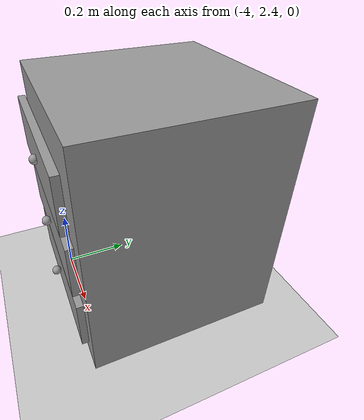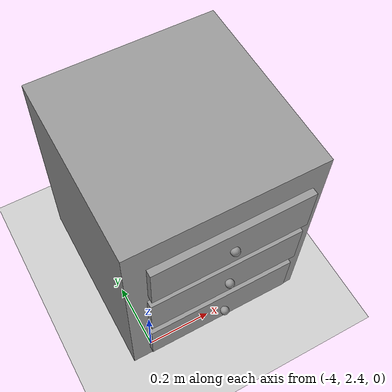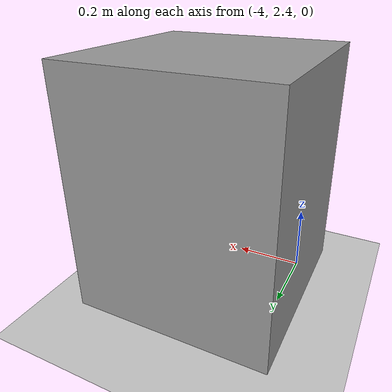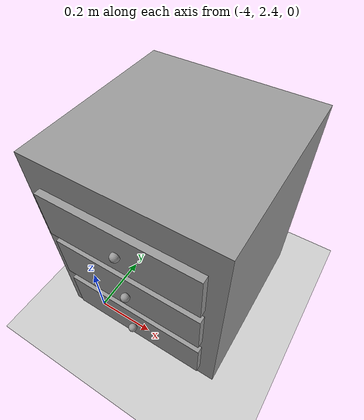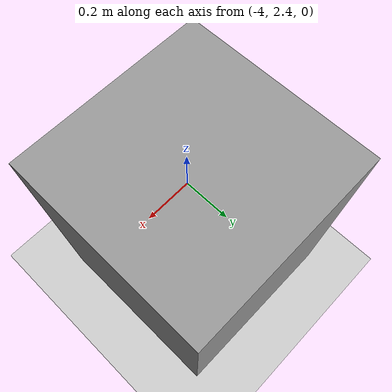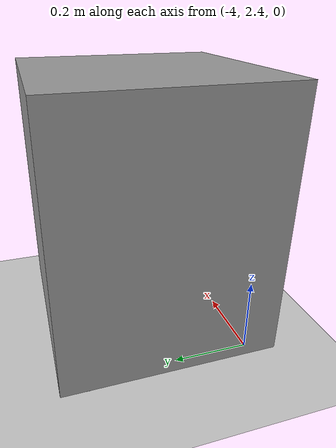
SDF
<sdf version="1.7">
 <world name="default">
  <model name="ground_plane">
   <static>1</static>
   <link name="link">
    <collision name="collision">
     <geometry><plane><normal>0 0 1</normal><size>100 100</size></plane></geometry>
     <surface>
      <contact><collide_bitmask>65535</collide_bitmask></contact>
      <friction><ode><mu>100</mu><mu2>50</mu2></ode></friction>
     </surface>
    </collision>
    <visual name="visual">
     <cast_shadows>0</cast_shadows>
     <geometry><plane><normal>0 0 1</normal><size>100 100</size></plane></geometry>
     <material>
      <script><uri>file://media/materials/scripts/gazebo.material</uri><name>Gazebo/Grey</name></script>
     </material>
    </visual>
   </link>
  </model>
  <model name="my_drawer_v2">
   <link name="link">
    <inertial>
     <mass>1</mass>
     <inertia>
      <ixx>0.166667</ixx>
      <ixy>0</ixy>
      <ixz>0</ixz>
      <iyy>0.166667</iyy>
      <iyz>0</iyz>
      <izz>0.166667</izz>
     </inertia>
    </inertial>
    <pose>0 0 0.116299 0 -0 0</pose>
    <visual name="visual">
     <geometry><box><size>0.55 0.55 0.675</size></box></geometry>
     <material>
      <script><name>Gazebo/Grey</name><uri>file://media/materials/scripts/gazebo.material</uri></script>
      <shader type="pixel"><normal_map>__default__</normal_map></shader>
      <ambient>0.9 0.9 0.9 1</ambient>
      <diffuse>0.9 0.9 0.9 1</diffuse>
      <specular>0.01 0.01 0.01 1</specular>
      <emissive>0 0 0 1</emissive>
     </material>
     <pose>0 0 0.27 0 -0 0</pose>
    </visual>
    <collision name="collision">
     <pose>0 0 0.27 0 -0 0</pose>
     <geometry><box><size>0.55 0.55 0.675</size></box></geometry>
     <surface>
      <friction>
       <ode><mu>1</mu><mu2>1</mu2><fdir1>0 0 0</fdir1><slip1>0</slip1><slip2>0</slip2></ode>
       <torsional>
        <coefficient>1</coefficient>
        <patch_radius>0</patch_radius>
        <surface_radius>0</surface_radius>
        <use_patch_radius>1</use_patch_radius>
        <ode><slip>0</slip></ode>
       </torsional>
      </friction>
      <bounce><restitution_coefficient>0</restitution_coefficient><threshold>1e+06</threshold></bounce>
      <contact>
       <collide_without_contact>0</collide_without_contact>
       <collide_without_contact_bitmask>1</collide_without_contact_bitmask>
       <collide_bitmask>1</collide_bitmask>
       <ode>
        <soft_cfm>0</soft_cfm>
        <soft_erp>0.2</soft_erp>
        <kp>1e+13</kp>
        <kd>1</kd>
        <max_vel>0.01</max_vel>
        <min_depth>0</min_depth>
       </ode>
       <bullet>
        <split_impulse>1</split_impulse>
        <split_impulse_penetration_threshold>-0.01</split_impulse_penetration_threshold>
        <soft_cfm>0</soft_cfm>
        <soft_erp>0.2</soft_erp>
        <kp>1e+13</kp>
        <kd>1</kd>
       </bullet>
      </contact>
     </surface>
    </collision>
   </link>
   <link name="link_0">
    <inertial>
     <mass>1</mass>
     <inertia><ixx>0.145833</ixx><ixy>0</ixy><ixz>0</ixz><iyy>0.145833</iyy><iyz>0</iyz><izz>0.125</izz></inertia>
    </inertial>
    <pose>0.2095 -0.203821 0.302524 0 -0 0</pose>
    <visual name="visual">
     <pose>0 0 -0.275 0 -0 0</pose>
     <geometry><cylinder><radius>0.025</radius><length>0.05</length></cylinder></geometry>
     <material>
      <lighting>1</lighting>
      <script><uri>file://media/materials/scripts/gazebo.material</uri><name>Gazebo/Grey</name></script>
      <shader type="pixel"><normal_map>__default__</normal_map></shader>
      <ambient>0.7 0.7 0.7 1</ambient>
      <diffuse>0.7 0.7 0.7 1</diffuse>
      <specular>0.01 0.01 0.01 1</specular>
      <emissive>0 0 0 1</emissive>
     </material>
    </visual>
    <collision name="collision">
     <pose>0 0 -0.275 0 -0 0</pose>
     <geometry><cylinder><radius>0.025</radius><length>0.05</length></cylinder></geometry>
     <surface>
      <friction>
       <ode><mu>1</mu><mu2>1</mu2><fdir1>0 0 0</fdir1><slip1>0</slip1><slip2>0</slip2></ode>
       <torsional>
        <coefficient>1</coefficient>
        <patch_radius>0</patch_radius>
        <surface_radius>0</surface_radius>
        <use_patch_radius>1</use_patch_radius>
        <ode><slip>0</slip></ode>
       </torsional>
      </friction>
      <bounce><restitution_coefficient>0</restitution_coefficient><threshold>1e+06</threshold></bounce>
      <contact>
       <collide_without_contact>0</collide_without_contact>
       <collide_without_contact_bitmask>1</collide_without_contact_bitmask>
       <collide_bitmask>1</collide_bitmask>
       <ode>
        <soft_cfm>0</soft_cfm>
        <soft_erp>0.2</soft_erp>
        <kp>1e+13</kp>
        <kd>1</kd>
        <max_vel>0.01</max_vel>
        <min_depth>0</min_depth>
       </ode>
       <bullet>
        <split_impulse>1</split_impulse>
        <split_impulse_penetration_threshold>-0.01</split_impulse_penetration_threshold>
        <soft_cfm>0</soft_cfm>
        <soft_erp>0.2</soft_erp>
        <kp>1e+13</kp>
        <kd>1</kd>
       </bullet>
      </contact>
     </surface>
    </collision>
   </link>
   <link name="link_0_0_clone">
    <inertial>
     <mass>1</mass>
     <inertia>
      <ixx>0.166667</ixx>
      <ixy>0</ixy>
      <ixz>0</ixz>
      <iyy>0.166667</iyy>
      <iyz>0</iyz>
      <izz>0.166667</izz>
     </inertia>
    </inertial>
    <pose>-0.003378 0.283932 0.180993 0 -0 0</pose>
    <visual name="visual">
     <geometry><box><size>0.45 0.02 0.15</size></box></geometry>
     <material>
      <lighting>1</lighting>
      <script><uri>file://media/materials/scripts/gazebo.material</uri><name>Gazebo/Grey</name></script>
      <shader type="pixel"><normal_map>__default__</normal_map></shader>
      <ambient>0.9 0.9 0.9 1</ambient>
      <diffuse>0.9 0.9 0.9 1</diffuse>
      <specular>0.01 0.01 0.01 1</specular>
      <emissive>0 0 0 1</emissive>
     </material>
    </visual>
    <collision name="collision">
     <geometry><box><size>0.45 0.02 0.15</size></box></geometry>
     <surface>
      <friction>
       <ode><mu>1</mu><mu2>1</mu2><fdir1>0 0 0</fdir1><slip1>0</slip1><slip2>0</slip2></ode>
       <torsional>
        <coefficient>1</coefficient>
        <patch_radius>0</patch_radius>
        <surface_radius>0</surface_radius>
        <use_patch_radius>1</use_patch_radius>
        <ode><slip>0</slip></ode>
       </torsional>
      </friction>
      <bounce><restitution_coefficient>0</restitution_coefficient><threshold>1e+06</threshold></bounce>
      <contact>
       <collide_without_contact>0</collide_without_contact>
       <collide_without_contact_bitmask>1</collide_without_contact_bitmask>
       <collide_bitmask>1</collide_bitmask>
       <ode>
        <soft_cfm>0</soft_cfm>
        <soft_erp>0.2</soft_erp>
        <kp>1e+13</kp>
        <kd>1</kd>
        <max_vel>0.01</max_vel>
        <min_depth>0</min_depth>
       </ode>
       <bullet>
        <split_impulse>1</split_impulse>
        <split_impulse_penetration_threshold>-0.01</split_impulse_penetration_threshold>
        <soft_cfm>0</soft_cfm>
        <soft_erp>0.2</soft_erp>
        <kp>1e+13</kp>
        <kd>1</kd>
       </bullet>
      </contact>
     </surface>
    </collision>
   </link>
   <link name="link_0_0_clone_clone">
    <inertial>
     <mass>1</mass>
     <inertia>
      <ixx>0.166667</ixx>
      <ixy>0</ixy>
      <ixz>0</ixz>
      <iyy>0.166667</iyy>
      <iyz>0</iyz>
      <izz>0.166667</izz>
     </inertia>
    </inertial>
    <pose>-0.004239 0.28732 0.377607 0 -0 0</pose>
    <visual name="visual">
     <geometry><box><size>0.45 0.02 0.15</size></box></geometry>
     <material>
      <lighting>1</lighting>
      <script><uri>file://media/materials/scripts/gazebo.material</uri><name>Gazebo/Grey</name></script>
      <shader type="pixel"><normal_map>__default__</normal_map></shader>
      <ambient>0.9 0.9 0.9 1</ambient>
      <diffuse>0.9 0.9 0.9 1</diffuse>
      <specular>0.01 0.01 0.01 1</specular>
      <emissive>0 0 0 1</emissive>
     </material>
    </visual>
    <collision name="collision">
     <geometry><box><size>0.45 0.02 0.15</size></box></geometry>
     <surface>
      <friction>
       <ode><mu>1</mu><mu2>1</mu2><fdir1>0 0 0</fdir1><slip1>0</slip1><slip2>0</slip2></ode>
       <torsional>
        <coefficient>1</coefficient>
        <patch_radius>0</patch_radius>
        <surface_radius>0</surface_radius>
        <use_patch_radius>1</use_patch_radius>
        <ode><slip>0</slip></ode>
       </torsional>
      </friction>
      <bounce><restitution_coefficient>0</restitution_coefficient><threshold>1e+06</threshold></bounce>
      <contact>
       <collide_without_contact>0</collide_without_contact>
       <collide_without_contact_bitmask>1</collide_without_contact_bitmask>
       <collide_bitmask>1</collide_bitmask>
       <ode>
        <soft_cfm>0</soft_cfm>
        <soft_erp>0.2</soft_erp>
        <kp>1e+13</kp>
        <kd>1</kd>
        <max_vel>0.01</max_vel>
        <min_depth>0</min_depth>
       </ode>
       <bullet>
        <split_impulse>1</split_impulse>
        <split_impulse_penetration_threshold>-0.01</split_impulse_penetration_threshold>
        <soft_cfm>0</soft_cfm>
        <soft_erp>0.2</soft_erp>
        <kp>1e+13</kp>
        <kd>1</kd>
       </bullet>
      </contact>
     </surface>
    </collision>
   </link>
   <link name="link_0_0_clone_clone_clone">
    <inertial>
     <mass>1</mass>
     <inertia>
      <ixx>0.166667</ixx>
      <ixy>0</ixy>
      <ixz>0</ixz>
      <iyy>0.166667</iyy>
      <iyz>0</iyz>
      <izz>0.166667</izz>
     </inertia>
    </inertial>
    <pose>-0.005805 0.292346 0.569265 0 0 -3.13872</pose>
    <visual name="visual">
     <geometry><box><size>0.45 0.02 0.15</size></box></geometry>
     <material>
      <lighting>1</lighting>
      <script><uri>file://media/materials/scripts/gazebo.material</uri><name>Gazebo/Grey</name></script>
      <shader type="pixel"><normal_map>__default__</normal_map></shader>
      <ambient>0.9 0.9 0.9 1</ambient>
      <diffuse>0.9 0.9 0.9 1</diffuse>
      <specular>0.01 0.01 0.01 1</specular>
      <emissive>0 0 0 1</emissive>
     </material>
    </visual>
    <collision name="collision">
     <geometry><box><size>0.45 0.02 0.15</size></box></geometry>
     <surface>
      <friction>
       <ode><mu>1</mu><mu2>1</mu2><fdir1>0 0 0</fdir1><slip1>0</slip1><slip2>0</slip2></ode>
       <torsional>
        <coefficient>1</coefficient>
        <patch_radius>0</patch_radius>
        <surface_radius>0</surface_radius>
        <use_patch_radius>1</use_patch_radius>
        <ode><slip>0</slip></ode>
       </torsional>
      </friction>
      <bounce><restitution_coefficient>0</restitution_coefficient><threshold>1e+06</threshold></bounce>
      <contact>
       <collide_without_contact>0</collide_without_contact>
       <collide_without_contact_bitmask>1</collide_without_contact_bitmask>
       <collide_bitmask>1</collide_bitmask>
       <ode>
        <soft_cfm>0</soft_cfm>
        <soft_erp>0.2</soft_erp>
        <kp>1e+13</kp>
        <kd>1</kd>
        <max_vel>0.01</max_vel>
        <min_depth>0</min_depth>
       </ode>
       <bullet>
        <split_impulse>1</split_impulse>
        <split_impulse_penetration_threshold>-0.01</split_impulse_penetration_threshold>
        <soft_cfm>0</soft_cfm>
        <soft_erp>0.2</soft_erp>
        <kp>1e+13</kp>
        <kd>1</kd>
       </bullet>
      </contact>
     </surface>
    </collision>
   </link>
   <link name="link_0_clone">
    <inertial>
     <mass>1</mass>
     <inertia><ixx>0.145833</ixx><ixy>0</ixy><ixz>0</ixz><iyy>0.145833</iyy><iyz>0</iyz><izz>0.125</izz></inertia>
    </inertial>
    <pose>-0.20661 -0.201979 0.303229 0 -0 0</pose>
    <visual name="visual">
     <pose>0 0 -0.275 0 -0 0</pose>
     <geometry><cylinder><radius>0.025</radius><length>0.05</length></cylinder></geometry>
     <material>
      <lighting>1</lighting>
      <script><uri>file://media/materials/scripts/gazebo.material</uri><name>Gazebo/Grey</name></script>
      <shader type="pixel"><normal_map>__default__</normal_map></shader>
      <ambient>0.8 0.8 0.8 1</ambient>
      <diffuse>0.8 0.8 0.8 1</diffuse>
      <specular>0.01 0.01 0.01 1</specular>
      <emissive>0 0 0 1</emissive>
     </material>
    </visual>
    <collision name="collision">
     <pose>0 0 -0.275 0 -0 0</pose>
     <geometry><cylinder><radius>0.025</radius><length>0.05</length></cylinder></geometry>
     <surface>
      <friction>
       <ode><mu>1</mu><mu2>1</mu2><fdir1>0 0 0</fdir1><slip1>0</slip1><slip2>0</slip2></ode>
       <torsional>
        <coefficient>1</coefficient>
        <patch_radius>0</patch_radius>
        <surface_radius>0</surface_radius>
        <use_patch_radius>1</use_patch_radius>
        <ode><slip>0</slip></ode>
       </torsional>
      </friction>
      <bounce><restitution_coefficient>0</restitution_coefficient><threshold>1e+06</threshold></bounce>
      <contact>
       <collide_without_contact>0</collide_without_contact>
       <collide_without_contact_bitmask>1</collide_without_contact_bitmask>
       <collide_bitmask>1</collide_bitmask>
       <ode>
        <soft_cfm>0</soft_cfm>
        <soft_erp>0.2</soft_erp>
        <kp>1e+13</kp>
        <kd>1</kd>
        <max_vel>0.01</max_vel>
        <min_depth>0</min_depth>
       </ode>
       <bullet>
        <split_impulse>1</split_impulse>
        <split_impulse_penetration_threshold>-0.01</split_impulse_penetration_threshold>
        <soft_cfm>0</soft_cfm>
        <soft_erp>0.2</soft_erp>
        <kp>1e+13</kp>
        <kd>1</kd>
       </bullet>
      </contact>
     </surface>
    </collision>
   </link>
   <link name="link_0_clone_0">
    <inertial>
     <mass>1</mass>
     <inertia><ixx>0.145833</ixx><ixy>0</ixy><ixz>0</ixz><iyy>0.145833</iyy><iyz>0</iyz><izz>0.125</izz></inertia>
    </inertial>
    <pose>0.205481 0.211972 0.302524 0 -0 0</pose>
    <visual name="visual">
     <pose>0 0 -0.275 0 -0 0</pose>
     <geometry><cylinder><radius>0.025</radius><length>0.05</length></cylinder></geometry>
     <material>
      <lighting>1</lighting>
      <script><uri>file://media/materials/scripts/gazebo.material</uri><name>Gazebo/Grey</name></script>
      <shader type="pixel"><normal_map>__default__</normal_map></shader>
      <ambient>0.7 0.7 0.7 1</ambient>
      <diffuse>0.7 0.7 0.7 1</diffuse>
      <specular>0.01 0.01 0.01 1</specular>
      <emissive>0 0 0 1</emissive>
     </material>
    </visual>
    <collision name="collision">
     <pose>0 0 -0.275 0 -0 0</pose>
     <geometry><cylinder><radius>0.025</radius><length>0.05</length></cylinder></geometry>
     <surface>
      <friction>
       <ode><mu>1</mu><mu2>1</mu2><fdir1>0 0 0</fdir1><slip1>0</slip1><slip2>0</slip2></ode>
       <torsional>
        <coefficient>1</coefficient>
        <patch_radius>0</patch_radius>
        <surface_radius>0</surface_radius>
        <use_patch_radius>1</use_patch_radius>
        <ode><slip>0</slip></ode>
       </torsional>
      </friction>
      <bounce><restitution_coefficient>0</restitution_coefficient><threshold>1e+06</threshold></bounce>
      <contact>
       <collide_without_contact>0</collide_without_contact>
       <collide_without_contact_bitmask>1</collide_without_contact_bitmask>
       <collide_bitmask>1</collide_bitmask>
       <ode>
        <soft_cfm>0</soft_cfm>
        <soft_erp>0.2</soft_erp>
        <kp>1e+13</kp>
        <kd>1</kd>
        <max_vel>0.01</max_vel>
        <min_depth>0</min_depth>
       </ode>
       <bullet>
        <split_impulse>1</split_impulse>
        <split_impulse_penetration_threshold>-0.01</split_impulse_penetration_threshold>
        <soft_cfm>0</soft_cfm>
        <soft_erp>0.2</soft_erp>
        <kp>1e+13</kp>
        <kd>1</kd>
       </bullet>
      </contact>
     </surface>
    </collision>
   </link>
   <link name="link_0_clone_0_clone">
    <inertial>
     <mass>1</mass>
     <inertia><ixx>0.145833</ixx><ixy>0</ixy><ixz>0</ixz><iyy>0.145833</iyy><iyz>0</iyz><izz>0.125</izz></inertia>
    </inertial>
    <pose>-0.197514 0.204937 0.302524 0 -0 0</pose>
    <visual name="visual">
     <pose>0 0 -0.275 0 -0 0</pose>
     <geometry><cylinder><radius>0.025</radius><length>0.05</length></cylinder></geometry>
     <material>
      <lighting>1</lighting>
      <script><uri>file://media/materials/scripts/gazebo.material</uri><name>Gazebo/Grey</name></script>
      <shader type="pixel"><normal_map>__default__</normal_map></shader>
      <ambient>0.7 0.7 0.7 1</ambient>
      <diffuse>0.7 0.7 0.7 1</diffuse>
      <specular>0.01 0.01 0.01 1</specular>
      <emissive>0 0 0 1</emissive>
     </material>
    </visual>
    <collision name="collision">
     <pose>0 0 -0.275 0 -0 0</pose>
     <geometry><cylinder><radius>0.025</radius><length>0.05</length></cylinder></geometry>
     <surface>
      <friction>
       <ode><mu>1</mu><mu2>1</mu2><fdir1>0 0 0</fdir1><slip1>0</slip1><slip2>0</slip2></ode>
       <torsional>
        <coefficient>1</coefficient>
        <patch_radius>0</patch_radius>
        <surface_radius>0</surface_radius>
        <use_patch_radius>1</use_patch_radius>
        <ode><slip>0</slip></ode>
       </torsional>
      </friction>
      <bounce><restitution_coefficient>0</restitution_coefficient><threshold>1e+06</threshold></bounce>
      <contact>
       <collide_without_contact>0</collide_without_contact>
       <collide_without_contact_bitmask>1</collide_without_contact_bitmask>
       <collide_bitmask>1</collide_bitmask>
       <ode>
        <soft_cfm>0</soft_cfm>
        <soft_erp>0.2</soft_erp>
        <kp>1e+13</kp>
        <kd>1</kd>
        <max_vel>0.01</max_vel>
        <min_depth>0</min_depth>
       </ode>
       <bullet>
        <split_impulse>1</split_impulse>
        <split_impulse_penetration_threshold>-0.01</split_impulse_penetration_threshold>
        <soft_cfm>0</soft_cfm>
        <soft_erp>0.2</soft_erp>
        <kp>1e+13</kp>
        <kd>1</kd>
       </bullet>
      </contact>
     </surface>
    </collision>
   </link>
   <link name="link_1">
    <inertial>
     <mass>1</mass>
     <inertia><ixx>0.1</ixx><ixy>0</ixy><ixz>0</ixz><iyy>0.1</iyy><iyz>0</iyz><izz>0.1</izz></inertia>
    </inertial>
    <pose>-0.007427 0.306598 0.372378 0 -0 0</pose>
    <visual name="visual">
     <geometry><sphere><radius>0.013</radius></sphere></geometry>
     <material>
      <lighting>1</lighting>
      <script><uri>file://media/materials/scripts/gazebo.material</uri><name>Gazebo/Grey</name></script>
      <shader type="pixel"><normal_map>__default__</normal_map></shader>
      <ambient>0.2 0.2 0.2 1</ambient>
      <diffuse>0.3 0.3 0.3 1</diffuse>
      <specular>0.01 0.01 0.01 1</specular>
      <emissive>0 0 0 1</emissive>
     </material>
    </visual>
    <collision name="collision">
     <geometry><sphere><radius>0.013</radius></sphere></geometry>
     <surface>
      <friction>
       <ode><mu>1</mu><mu2>1</mu2><fdir1>0 0 0</fdir1><slip1>0</slip1><slip2>0</slip2></ode>
       <torsional>
        <coefficient>1</coefficient>
        <patch_radius>0</patch_radius>
        <surface_radius>0</surface_radius>
        <use_patch_radius>1</use_patch_radius>
        <ode><slip>0</slip></ode>
       </torsional>
      </friction>
      <bounce><restitution_coefficient>0</restitution_coefficient><threshold>1e+06</threshold></bounce>
      <contact>
       <collide_without_contact>0</collide_without_contact>
       <collide_without_contact_bitmask>1</collide_without_contact_bitmask>
       <collide_bitmask>1</collide_bitmask>
       <ode>
        <soft_cfm>0</soft_cfm>
        <soft_erp>0.2</soft_erp>
        <kp>1e+13</kp>
        <kd>1</kd>
        <max_vel>0.01</max_vel>
        <min_depth>0</min_depth>
       </ode>
       <bullet>
        <split_impulse>1</split_impulse>
        <split_impulse_penetration_threshold>-0.01</split_impulse_penetration_threshold>
        <soft_cfm>0</soft_cfm>
        <soft_erp>0.2</soft_erp>
        <kp>1e+13</kp>
        <kd>1</kd>
       </bullet>
      </contact>
     </surface>
    </collision>
   </link>
   <link name="link_1_clone">
    <inertial>
     <mass>1</mass>
     <inertia><ixx>0.1</ixx><ixy>0</ixy><ixz>0</ixz><iyy>0.1</iyy><iyz>0</iyz><izz>0.1</izz></inertia>
    </inertial>
    <pose>-0.007411 0.306159 0.179254 0 -0 0</pose>
    <visual name="visual">
     <geometry><sphere><radius>0.013</radius></sphere></geometry>
     <material>
      <lighting>1</lighting>
      <script><uri>file://media/materials/scripts/gazebo.material</uri><name>Gazebo/Grey</name></script>
      <shader type="pixel"><normal_map>__default__</normal_map></shader>
      <ambient>0.2 0.2 0.2 1</ambient>
      <diffuse>0.3 0.3 0.3 1</diffuse>
      <specular>0.01 0.01 0.01 1</specular>
      <emissive>0 0 0 1</emissive>
     </material>
    </visual>
    <collision name="collision">
     <geometry><sphere><radius>0.013</radius></sphere></geometry>
     <surface>
      <friction>
       <ode><mu>1</mu><mu2>1</mu2><fdir1>0 0 0</fdir1><slip1>0</slip1><slip2>0</slip2></ode>
       <torsional>
        <coefficient>1</coefficient>
        <patch_radius>0</patch_radius>
        <surface_radius>0</surface_radius>
        <use_patch_radius>1</use_patch_radius>
        <ode><slip>0</slip></ode>
       </torsional>
      </friction>
      <bounce><restitution_coefficient>0</restitution_coefficient><threshold>1e+06</threshold></bounce>
      <contact>
       <collide_without_contact>0</collide_without_contact>
       <collide_without_contact_bitmask>1</collide_without_contact_bitmask>
       <collide_bitmask>1</collide_bitmask>
       <ode>
        <soft_cfm>0</soft_cfm>
        <soft_erp>0.2</soft_erp>
        <kp>1e+13</kp>
        <kd>1</kd>
        <max_vel>0.01</max_vel>
        <min_depth>0</min_depth>
       </ode>
       <bullet>
        <split_impulse>1</split_impulse>
        <split_impulse_penetration_threshold>-0.01</split_impulse_penetration_threshold>
        <soft_cfm>0</soft_cfm>
        <soft_erp>0.2</soft_erp>
        <kp>1e+13</kp>
        <kd>1</kd>
       </bullet>
      </contact>
     </surface>
    </collision>
   </link>
   <link name="link_1_clone_clone">
    <inertial>
     <mass>1</mass>
     <inertia><ixx>0.1</ixx><ixy>0</ixy><ixz>0</ixz><iyy>0.1</iyy><iyz>0</iyz><izz>0.1</izz></inertia>
    </inertial>
    <pose>-0.006412 0.30676 0.563852 0 0 -3.13872</pose>
    <visual name="visual">
     <geometry><sphere><radius>0.013</radius></sphere></geometry>
     <material>
      <lighting>1</lighting>
      <script><uri>file://media/materials/scripts/gazebo.material</uri><name>Gazebo/Grey</name></script>
      <shader type="pixel"><normal_map>__default__</normal_map></shader>
      <ambient>0.2 0.2 0.2 1</ambient>
      <diffuse>0.3 0.3 0.3 1</diffuse>
      <specular>0.01 0.01 0.01 1</specular>
      <emissive>0 0 0 1</emissive>
     </material>
    </visual>
    <collision name="collision">
     <geometry><sphere><radius>0.013</radius></sphere></geometry>
     <surface>
      <friction>
       <ode><mu>1</mu><mu2>1</mu2><fdir1>0 0 0</fdir1><slip1>0</slip1><slip2>0</slip2></ode>
       <torsional>
        <coefficient>1</coefficient>
        <patch_radius>0</patch_radius>
        <surface_radius>0</surface_radius>
        <use_patch_radius>1</use_patch_radius>
        <ode><slip>0</slip></ode>
       </torsional>
      </friction>
      <bounce><restitution_coefficient>0</restitution_coefficient><threshold>1e+06</threshold></bounce>
      <contact>
       <collide_without_contact>0</collide_without_contact>
       <collide_without_contact_bitmask>1</collide_without_contact_bitmask>
       <collide_bitmask>1</collide_bitmask>
       <ode>
        <soft_cfm>0</soft_cfm>
        <soft_erp>0.2</soft_erp>
        <kp>1e+13</kp>
        <kd>1</kd>
        <max_vel>0.01</max_vel>
        <min_depth>0</min_depth>
       </ode>
       <bullet>
        <split_impulse>1</split_impulse>
        <split_impulse_penetration_threshold>-0.01</split_impulse_penetration_threshold>
        <soft_cfm>0</soft_cfm>
        <soft_erp>0.2</soft_erp>
        <kp>1e+13</kp>
        <kd>1</kd>
       </bullet>
      </contact>
     </surface>
    </collision>
   </link>
   <static>1</static>
   <pose>-3.79916 2.63424 0 0 -0 3.14159</pose>
  </model>
 </world>
</sdf>
